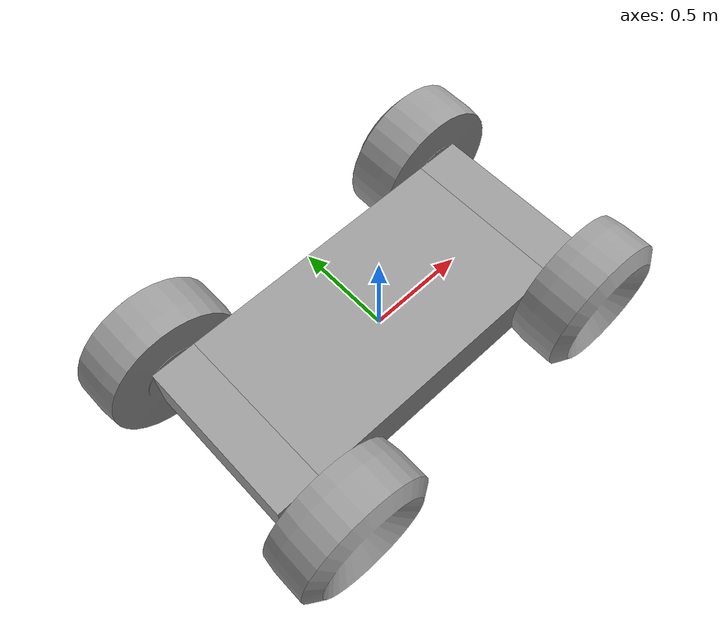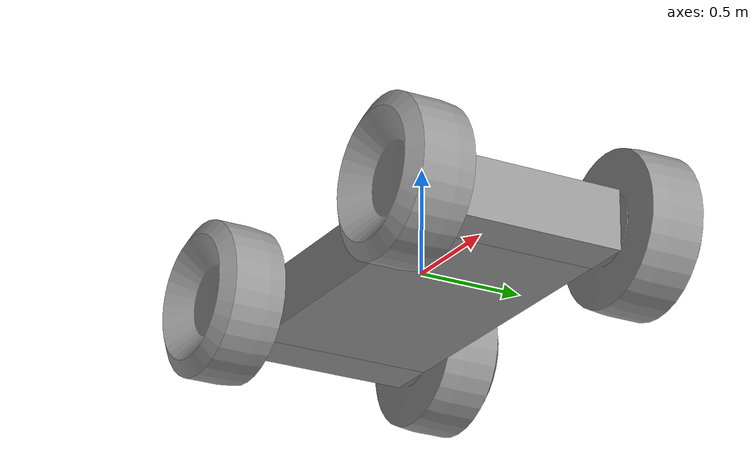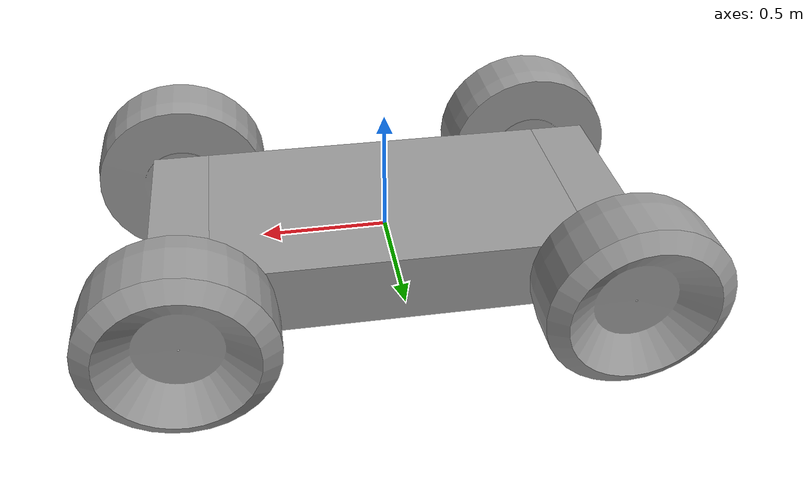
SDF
<?xml version='1.0'?>
<sdf version='1.7'>
  <model name='robovolc'>
    <link name='link_0'>
      <inertial>
        <mass>1</mass>
        <inertia>
          <ixx>0.166667</ixx>
          <ixy>0</ixy>
          <ixz>0</ixz>
          <iyy>0.166667</iyy>
          <iyz>0</iyz>
          <izz>0.166667</izz>
        </inertia>
      </inertial>
      <pose>-0.014097 0.007179 -0 0 -0 0</pose>
      <visual name='visual'>
        <pose>0 0 0 0 -0 0</pose>
        <geometry>
          <mesh>
            <uri>/media/kenan/kenan-acads/thesis/robot-alignment-thesis/gazebo/models/robovolc/parts/lowerframe.dae</uri>
            <scale>1 1 1</scale>
          </mesh>
        </geometry>
        <material>
          <lighting>1</lighting>
          <script>
            <uri>file://media/materials/scripts/gazebo.material</uri>
            <name>Gazebo/Grey</name>
          </script>
          <shader type='pixel'/>
          <emissive>0 0 0 1</emissive>
        </material>
        <transparency>0</transparency>
        <cast_shadows>1</cast_shadows>
      </visual>
      <collision name='collision'>
        <laser_retro>0</laser_retro>
        <max_contacts>10</max_contacts>
        <pose>0 0 0 0 -0 0</pose>
        <geometry>
          <mesh>
            <uri>/media/kenan/kenan-acads/thesis/robot-alignment-thesis/gazebo/models/robovolc/parts/lowerframe.dae</uri>
            <scale>1 1 1</scale>
          </mesh>
        </geometry>
        <surface>
          <friction>
            <ode>
              <mu>1</mu>
              <mu2>1</mu2>
              <fdir1>0 0 0</fdir1>
              <slip1>0</slip1>
              <slip2>0</slip2>
            </ode>
            <torsional>
              <coefficient>1</coefficient>
              <patch_radius>0</patch_radius>
              <surface_radius>0</surface_radius>
              <use_patch_radius>1</use_patch_radius>
              <ode>
                <slip>0</slip>
              </ode>
            </torsional>
          </friction>
          <bounce>
            <restitution_coefficient>0</restitution_coefficient>
            <threshold>1e+06</threshold>
          </bounce>
          <contact>
            <collide_without_contact>0</collide_without_contact>
            <collide_without_contact_bitmask>1</collide_without_contact_bitmask>
            <collide_bitmask>1</collide_bitmask>
            <ode>
              <soft_cfm>0</soft_cfm>
              <soft_erp>0.2</soft_erp>
              <kp>1e+13</kp>
              <kd>1</kd>
              <max_vel>0.01</max_vel>
              <min_depth>0</min_depth>
            </ode>
            <bullet>
              <split_impulse>1</split_impulse>
              <split_impulse_penetration_threshold>-0.01</split_impulse_penetration_threshold>
              <soft_cfm>0</soft_cfm>
              <soft_erp>0.2</soft_erp>
              <kp>1e+13</kp>
              <kd>1</kd>
            </bullet>
          </contact>
        </surface>
      </collision>
    </link>
    <link name='link_1'>
      <inertial>
        <mass>1</mass>
        <inertia>
          <ixx>0.166667</ixx>
          <ixy>0</ixy>
          <ixz>0</ixz>
          <iyy>0.166667</iyy>
          <iyz>0</iyz>
          <izz>0.166667</izz>
        </inertia>
      </inertial>
      <pose>0.819354 0.007179 0 0 -0 0</pose>
      <visual name='visual'>
        <pose>0 0 0 0 -0 0</pose>
        <geometry>
          <mesh>
            <uri>/media/kenan/kenan-acads/thesis/robot-alignment-thesis/gazebo/models/robovolc/parts/freedom.dae</uri>
            <scale>1 1 1</scale>
          </mesh>
        </geometry>
        <material>
          <lighting>1</lighting>
          <script>
            <uri>file://media/materials/scripts/gazebo.material</uri>
            <name>Gazebo/Grey</name>
          </script>
          <shader type='pixel'/>
          <emissive>0 0 0 1</emissive>
        </material>
        <transparency>0</transparency>
        <cast_shadows>1</cast_shadows>
      </visual>
      <collision name='collision'>
        <laser_retro>0</laser_retro>
        <max_contacts>10</max_contacts>
        <pose>0 0 0 0 -0 0</pose>
        <geometry>
          <mesh>
            <uri>/media/kenan/kenan-acads/thesis/robot-alignment-thesis/gazebo/models/robovolc/parts/freedom.dae</uri>
            <scale>1 1 1</scale>
          </mesh>
        </geometry>
        <surface>
          <friction>
            <ode>
              <mu>1</mu>
              <mu2>1</mu2>
              <fdir1>0 0 0</fdir1>
              <slip1>0</slip1>
              <slip2>0</slip2>
            </ode>
            <torsional>
              <coefficient>1</coefficient>
              <patch_radius>0</patch_radius>
              <surface_radius>0</surface_radius>
              <use_patch_radius>1</use_patch_radius>
              <ode>
                <slip>0</slip>
              </ode>
            </torsional>
          </friction>
          <bounce>
            <restitution_coefficient>0</restitution_coefficient>
            <threshold>1e+06</threshold>
          </bounce>
          <contact>
            <collide_without_contact>0</collide_without_contact>
            <collide_without_contact_bitmask>1</collide_without_contact_bitmask>
            <collide_bitmask>1</collide_bitmask>
            <ode>
              <soft_cfm>0</soft_cfm>
              <soft_erp>0.2</soft_erp>
              <kp>1e+13</kp>
              <kd>1</kd>
              <max_vel>0.01</max_vel>
              <min_depth>0</min_depth>
            </ode>
            <bullet>
              <split_impulse>1</split_impulse>
              <split_impulse_penetration_threshold>-0.01</split_impulse_penetration_threshold>
              <soft_cfm>0</soft_cfm>
              <soft_erp>0.2</soft_erp>
              <kp>1e+13</kp>
              <kd>1</kd>
            </bullet>
          </contact>
        </surface>
      </collision>
    </link>
    <link name='link_1_clone'>
      <inertial>
        <mass>1</mass>
        <inertia>
          <ixx>0.166667</ixx>
          <ixy>0</ixy>
          <ixz>0</ixz>
          <iyy>0.166667</iyy>
          <iyz>0</iyz>
          <izz>0.166667</izz>
        </inertia>
      </inertial>
      <pose>-0.84755 0.007179 0 0 -0 0</pose>
      <visual name='visual'>
        <pose>0 0 0 0 -0 0</pose>
        <geometry>
          <mesh>
            <uri>/media/kenan/kenan-acads/thesis/robot-alignment-thesis/gazebo/models/robovolc/parts/freedom.dae</uri>
            <scale>1 1 1</scale>
          </mesh>
        </geometry>
        <material>
          <lighting>1</lighting>
          <script>
            <uri>file://media/materials/scripts/gazebo.material</uri>
            <name>Gazebo/Grey</name>
          </script>
          <shader type='pixel'/>
          <emissive>0 0 0 1</emissive>
        </material>
        <transparency>0</transparency>
        <cast_shadows>1</cast_shadows>
      </visual>
      <collision name='collision'>
        <laser_retro>0</laser_retro>
        <max_contacts>10</max_contacts>
        <pose>0 0 0 0 -0 0</pose>
        <geometry>
          <mesh>
            <uri>/media/kenan/kenan-acads/thesis/robot-alignment-thesis/gazebo/models/robovolc/parts/freedom.dae</uri>
            <scale>1 1 1</scale>
          </mesh>
        </geometry>
        <surface>
          <friction>
            <ode>
              <mu>1</mu>
              <mu2>1</mu2>
              <fdir1>0 0 0</fdir1>
              <slip1>0</slip1>
              <slip2>0</slip2>
            </ode>
            <torsional>
              <coefficient>1</coefficient>
              <patch_radius>0</patch_radius>
              <surface_radius>0</surface_radius>
              <use_patch_radius>1</use_patch_radius>
              <ode>
                <slip>0</slip>
              </ode>
            </torsional>
          </friction>
          <bounce>
            <restitution_coefficient>0</restitution_coefficient>
            <threshold>1e+06</threshold>
          </bounce>
          <contact>
            <collide_without_contact>0</collide_without_contact>
            <collide_without_contact_bitmask>1</collide_without_contact_bitmask>
            <collide_bitmask>1</collide_bitmask>
            <ode>
              <soft_cfm>0</soft_cfm>
              <soft_erp>0.2</soft_erp>
              <kp>1e+13</kp>
              <kd>1</kd>
              <max_vel>0.01</max_vel>
              <min_depth>0</min_depth>
            </ode>
            <bullet>
              <split_impulse>1</split_impulse>
              <split_impulse_penetration_threshold>-0.01</split_impulse_penetration_threshold>
              <soft_cfm>0</soft_cfm>
              <soft_erp>0.2</soft_erp>
              <kp>1e+13</kp>
              <kd>1</kd>
            </bullet>
          </contact>
        </surface>
      </collision>
    </link>
    <link name='link_2'>
      <inertial>
        <mass>1</mass>
        <inertia>
          <ixx>0.166667</ixx>
          <ixy>0</ixy>
          <ixz>0</ixz>
          <iyy>0.166667</iyy>
          <iyz>0</iyz>
          <izz>0.166667</izz>
        </inertia>
      </inertial>
      <pose>0.826437 -0.58875 0 0 -0 0</pose>
      <visual name='visual'>
        <pose>0 0 0 0 -0 0</pose>
        <geometry>
          <mesh>
            <uri>/media/kenan/kenan-acads/thesis/robot-alignment-thesis/gazebo/models/robovolc/parts/wheel.dae</uri>
            <scale>1 1 1</scale>
          </mesh>
        </geometry>
        <material>
          <lighting>1</lighting>
          <script>
            <uri>file://media/materials/scripts/gazebo.material</uri>
            <name>Gazebo/Grey</name>
          </script>
          <shader type='pixel'/>
          <emissive>0 0 0 1</emissive>
        </material>
        <transparency>0</transparency>
        <cast_shadows>1</cast_shadows>
      </visual>
      <collision name='collision'>
        <laser_retro>0</laser_retro>
        <max_contacts>10</max_contacts>
        <pose>0 0 0 0 -0 0</pose>
        <geometry>
          <mesh>
            <uri>/media/kenan/kenan-acads/thesis/robot-alignment-thesis/gazebo/models/robovolc/parts/wheel.dae</uri>
            <scale>1 1 1</scale>
          </mesh>
        </geometry>
        <surface>
          <friction>
            <ode>
              <mu>1</mu>
              <mu2>1</mu2>
              <fdir1>0 0 0</fdir1>
              <slip1>0</slip1>
              <slip2>0</slip2>
            </ode>
            <torsional>
              <coefficient>1</coefficient>
              <patch_radius>0</patch_radius>
              <surface_radius>0</surface_radius>
              <use_patch_radius>1</use_patch_radius>
              <ode>
                <slip>0</slip>
              </ode>
            </torsional>
          </friction>
          <bounce>
            <restitution_coefficient>0</restitution_coefficient>
            <threshold>1e+06</threshold>
          </bounce>
          <contact>
            <collide_without_contact>0</collide_without_contact>
            <collide_without_contact_bitmask>1</collide_without_contact_bitmask>
            <collide_bitmask>1</collide_bitmask>
            <ode>
              <soft_cfm>0</soft_cfm>
              <soft_erp>0.2</soft_erp>
              <kp>1e+13</kp>
              <kd>1</kd>
              <max_vel>0.01</max_vel>
              <min_depth>0</min_depth>
            </ode>
            <bullet>
              <split_impulse>1</split_impulse>
              <split_impulse_penetration_threshold>-0.01</split_impulse_penetration_threshold>
              <soft_cfm>0</soft_cfm>
              <soft_erp>0.2</soft_erp>
              <kp>1e+13</kp>
              <kd>1</kd>
            </bullet>
          </contact>
        </surface>
      </collision>
    </link>
    <link name='link_2_clone'>
      <inertial>
        <mass>1</mass>
        <inertia>
          <ixx>0.166667</ixx>
          <ixy>0</ixy>
          <ixz>0</ixz>
          <iyy>0.166667</iyy>
          <iyz>0</iyz>
          <izz>0.166667</izz>
        </inertia>
      </inertial>
      <pose>-0.747556 -0.632039 -0 0 -0 0</pose>
      <visual name='visual'>
        <pose>0 0 0 0 -0 0</pose>
        <geometry>
          <mesh>
            <uri>/media/kenan/kenan-acads/thesis/robot-alignment-thesis/gazebo/models/robovolc/parts/wheel.dae</uri>
            <scale>1 1 1</scale>
          </mesh>
        </geometry>
        <material>
          <lighting>1</lighting>
          <script>
            <uri>file://media/materials/scripts/gazebo.material</uri>
            <name>Gazebo/Grey</name>
          </script>
          <shader type='pixel'/>
          <emissive>0 0 0 1</emissive>
        </material>
        <transparency>0</transparency>
        <cast_shadows>1</cast_shadows>
      </visual>
      <collision name='collision'>
        <laser_retro>0</laser_retro>
        <max_contacts>10</max_contacts>
        <pose>0 0 0 0 -0 0</pose>
        <geometry>
          <mesh>
            <uri>/media/kenan/kenan-acads/thesis/robot-alignment-thesis/gazebo/models/robovolc/parts/wheel.dae</uri>
            <scale>1 1 1</scale>
          </mesh>
        </geometry>
        <surface>
          <friction>
            <ode>
              <mu>1</mu>
              <mu2>1</mu2>
              <fdir1>0 0 0</fdir1>
              <slip1>0</slip1>
              <slip2>0</slip2>
            </ode>
            <torsional>
              <coefficient>1</coefficient>
              <patch_radius>0</patch_radius>
              <surface_radius>0</surface_radius>
              <use_patch_radius>1</use_patch_radius>
              <ode>
                <slip>0</slip>
              </ode>
            </torsional>
          </friction>
          <bounce>
            <restitution_coefficient>0</restitution_coefficient>
            <threshold>1e+06</threshold>
          </bounce>
          <contact>
            <collide_without_contact>0</collide_without_contact>
            <collide_without_contact_bitmask>1</collide_without_contact_bitmask>
            <collide_bitmask>1</collide_bitmask>
            <ode>
              <soft_cfm>0</soft_cfm>
              <soft_erp>0.2</soft_erp>
              <kp>1e+13</kp>
              <kd>1</kd>
              <max_vel>0.01</max_vel>
              <min_depth>0</min_depth>
            </ode>
            <bullet>
              <split_impulse>1</split_impulse>
              <split_impulse_penetration_threshold>-0.01</split_impulse_penetration_threshold>
              <soft_cfm>0</soft_cfm>
              <soft_erp>0.2</soft_erp>
              <kp>1e+13</kp>
              <kd>1</kd>
            </bullet>
          </contact>
        </surface>
      </collision>
    </link>
    <link name='link_2_clone_0_clone_clone'>
      <inertial>
        <mass>1</mass>
        <inertia>
          <ixx>0.166667</ixx>
          <ixy>0</ixy>
          <ixz>0</ixz>
          <iyy>0.166667</iyy>
          <iyz>0</iyz>
          <izz>0.166667</izz>
        </inertia>
        <pose>0 0 0 0 -0 0</pose>
      </inertial>
      <pose>0.826437 0.60311 0 0 -0 3.14159</pose>
      <gravity>1</gravity>
      <self_collide>0</self_collide>
      <kinematic>0</kinematic>
      <enable_wind>0</enable_wind>
      <visual name='visual'>
        <pose>0 0 0 0 -0 0</pose>
        <geometry>
          <mesh>
            <uri>/media/kenan/kenan-acads/thesis/robot-alignment-thesis/gazebo/models/robovolc/parts/wheel.dae</uri>
            <scale>1 1 1</scale>
          </mesh>
        </geometry>
        <material>
          <lighting>1</lighting>
          <script>
            <uri>file://media/materials/scripts/gazebo.material</uri>
            <name>Gazebo/Grey</name>
          </script>
          <shader type='pixel'>
            <normal_map>__default__</normal_map>
          </shader>
          <emissive>0 0 0 1</emissive>
          <ambient>0.3 0.3 0.3 1</ambient>
          <diffuse>0.7 0.7 0.7 1</diffuse>
          <specular>0.01 0.01 0.01 1</specular>
        </material>
        <transparency>0</transparency>
        <cast_shadows>1</cast_shadows>
      </visual>
      <collision name='collision'>
        <laser_retro>0</laser_retro>
        <max_contacts>10</max_contacts>
        <pose>0 0 0 0 -0 0</pose>
        <geometry>
          <mesh>
            <uri>/media/kenan/kenan-acads/thesis/robot-alignment-thesis/gazebo/models/robovolc/parts/wheel.dae</uri>
            <scale>1 1 1</scale>
          </mesh>
        </geometry>
        <surface>
          <friction>
            <ode>
              <mu>1</mu>
              <mu2>1</mu2>
              <fdir1>0 0 0</fdir1>
              <slip1>0</slip1>
              <slip2>0</slip2>
            </ode>
            <torsional>
              <coefficient>1</coefficient>
              <patch_radius>0</patch_radius>
              <surface_radius>0</surface_radius>
              <use_patch_radius>1</use_patch_radius>
              <ode>
                <slip>0</slip>
              </ode>
            </torsional>
          </friction>
          <bounce>
            <restitution_coefficient>0</restitution_coefficient>
            <threshold>1e+06</threshold>
          </bounce>
          <contact>
            <collide_without_contact>0</collide_without_contact>
            <collide_without_contact_bitmask>1</collide_without_contact_bitmask>
            <collide_bitmask>1</collide_bitmask>
            <ode>
              <soft_cfm>0</soft_cfm>
              <soft_erp>0.2</soft_erp>
              <kp>1e+13</kp>
              <kd>1</kd>
              <max_vel>0.01</max_vel>
              <min_depth>0</min_depth>
            </ode>
            <bullet>
              <split_impulse>1</split_impulse>
              <split_impulse_penetration_threshold>-0.01</split_impulse_penetration_threshold>
              <soft_cfm>0</soft_cfm>
              <soft_erp>0.2</soft_erp>
              <kp>1e+13</kp>
              <kd>1</kd>
            </bullet>
          </contact>
        </surface>
      </collision>
    </link>
    <link name='link_2_clone_0_clone_clone_clone'>
      <inertial>
        <mass>1</mass>
        <inertia>
          <ixx>0.166667</ixx>
          <ixy>0</ixy>
          <ixz>0</ixz>
          <iyy>0.166667</iyy>
          <iyz>0</iyz>
          <izz>0.166667</izz>
        </inertia>
        <pose>0 0 0 0 -0 0</pose>
      </inertial>
      <pose>-0.84755 0.60311 0 0 -0 3.14159</pose>
      <gravity>1</gravity>
      <self_collide>0</self_collide>
      <kinematic>0</kinematic>
      <enable_wind>0</enable_wind>
      <visual name='visual'>
        <pose>0 0 0 0 -0 0</pose>
        <geometry>
          <mesh>
            <uri>/media/kenan/kenan-acads/thesis/robot-alignment-thesis/gazebo/models/robovolc/parts/wheel.dae</uri>
            <scale>1 1 1</scale>
          </mesh>
        </geometry>
        <material>
          <lighting>1</lighting>
          <script>
            <uri>file://media/materials/scripts/gazebo.material</uri>
            <name>Gazebo/Grey</name>
          </script>
          <shader type='pixel'>
            <normal_map>__default__</normal_map>
          </shader>
          <emissive>0 0 0 1</emissive>
          <ambient>0.3 0.3 0.3 1</ambient>
          <diffuse>0.7 0.7 0.7 1</diffuse>
          <specular>0.01 0.01 0.01 1</specular>
        </material>
        <transparency>0</transparency>
        <cast_shadows>1</cast_shadows>
      </visual>
      <collision name='collision'>
        <laser_retro>0</laser_retro>
        <max_contacts>10</max_contacts>
        <pose>0 0 0 0 -0 0</pose>
        <geometry>
          <mesh>
            <uri>/media/kenan/kenan-acads/thesis/robot-alignment-thesis/gazebo/models/robovolc/parts/wheel.dae</uri>
            <scale>1 1 1</scale>
          </mesh>
        </geometry>
        <surface>
          <friction>
            <ode>
              <mu>1</mu>
              <mu2>1</mu2>
              <fdir1>0 0 0</fdir1>
              <slip1>0</slip1>
              <slip2>0</slip2>
            </ode>
            <torsional>
              <coefficient>1</coefficient>
              <patch_radius>0</patch_radius>
              <surface_radius>0</surface_radius>
              <use_patch_radius>1</use_patch_radius>
              <ode>
                <slip>0</slip>
              </ode>
            </torsional>
          </friction>
          <bounce>
            <restitution_coefficient>0</restitution_coefficient>
            <threshold>1e+06</threshold>
          </bounce>
          <contact>
            <collide_without_contact>0</collide_without_contact>
            <collide_without_contact_bitmask>1</collide_without_contact_bitmask>
            <collide_bitmask>1</collide_bitmask>
            <ode>
              <soft_cfm>0</soft_cfm>
              <soft_erp>0.2</soft_erp>
              <kp>1e+13</kp>
              <kd>1</kd>
              <max_vel>0.01</max_vel>
              <min_depth>0</min_depth>
            </ode>
            <bullet>
              <split_impulse>1</split_impulse>
              <split_impulse_penetration_threshold>-0.01</split_impulse_penetration_threshold>
              <soft_cfm>0</soft_cfm>
              <soft_erp>0.2</soft_erp>
              <kp>1e+13</kp>
              <kd>1</kd>
            </bullet>
          </contact>
        </surface>
      </collision>
    </link>
    <joint name='link_0_JOINT_0' type='revolute'>
      <parent>link_0</parent>
      <child>link_1</child>
      <pose>0 0 0 0 -0 0</pose>
      <axis>
        <xyz>1 0 0</xyz>
        <limit>
          <lower>-1.79769e+308</lower>
          <upper>1.79769e+308</upper>
          <effort>-1</effort>
          <velocity>-1</velocity>
        </limit>
        <dynamics>
          <spring_reference>0</spring_reference>
          <spring_stiffness>0</spring_stiffness>
          <damping>0</damping>
        </dynamics>
      </axis>
      <physics>
        <ode>
          <limit>
            <cfm>0</cfm>
            <erp>0.2</erp>
          </limit>
          <suspension>
            <cfm>0</cfm>
            <erp>0.2</erp>
          </suspension>
        </ode>
      </physics>
    </joint>
    <joint name='link_0_JOINT_1' type='revolute'>
      <parent>link_0</parent>
      <child>link_1_clone</child>
      <pose>0 0 0 0 -0 0</pose>
      <axis>
        <xyz>1 0 0</xyz>
        <limit>
          <lower>-1.79769e+308</lower>
          <upper>1.79769e+308</upper>
          <effort>-1</effort>
          <velocity>-1</velocity>
        </limit>
        <dynamics>
          <spring_reference>0</spring_reference>
          <spring_stiffness>0</spring_stiffness>
          <damping>0</damping>
        </dynamics>
      </axis>
      <physics>
        <ode>
          <limit>
            <cfm>0</cfm>
            <erp>0.2</erp>
          </limit>
          <suspension>
            <cfm>0</cfm>
            <erp>0.2</erp>
          </suspension>
        </ode>
      </physics>
    </joint>
    <joint name='link_1_JOINT_2' type='revolute'>
      <parent>link_1</parent>
      <child>link_2</child>
      <pose>0 0 0 0 -0 0</pose>
      <axis>
        <xyz>-0 -1 -0</xyz>
        <limit>
          <lower>-1.79769e+308</lower>
          <upper>1.79769e+308</upper>
          <effort>-1</effort>
          <velocity>-1</velocity>
        </limit>
        <dynamics>
          <spring_reference>0</spring_reference>
          <spring_stiffness>0</spring_stiffness>
          <damping>0</damping>
        </dynamics>
      </axis>
      <physics>
        <ode>
          <limit>
            <cfm>0</cfm>
            <erp>0.2</erp>
          </limit>
          <suspension>
            <cfm>0</cfm>
            <erp>0.2</erp>
          </suspension>
        </ode>
      </physics>
    </joint>
    <joint name='link_1_JOINT_5' type='revolute'>
      <parent>link_1</parent>
      <child>link_2_clone_0_clone_clone</child>
      <pose>0 0 0 0 -0 0</pose>
      <axis>
        <xyz>-0 -1 -0</xyz>
        <limit>
          <lower>-1.79769e+308</lower>
          <upper>1.79769e+308</upper>
          <effort>-1</effort>
          <velocity>-1</velocity>
        </limit>
        <dynamics>
          <spring_reference>0</spring_reference>
          <spring_stiffness>0</spring_stiffness>
          <damping>0</damping>
        </dynamics>
      </axis>
      <physics>
        <ode>
          <limit>
            <cfm>0</cfm>
            <erp>0.2</erp>
          </limit>
          <suspension>
            <cfm>0</cfm>
            <erp>0.2</erp>
          </suspension>
        </ode>
      </physics>
    </joint>
    <joint name='link_1_clone_JOINT_6' type='revolute'>
      <parent>link_1_clone</parent>
      <child>link_2_clone_0_clone_clone_clone</child>
      <pose>0 0 0 0 -0 0</pose>
      <axis>
        <xyz>-0 -1 -0</xyz>
        <limit>
          <lower>-1.79769e+308</lower>
          <upper>1.79769e+308</upper>
          <effort>-1</effort>
          <velocity>-1</velocity>
        </limit>
        <dynamics>
          <spring_reference>0</spring_reference>
          <spring_stiffness>0</spring_stiffness>
          <damping>0</damping>
        </dynamics>
      </axis>
      <physics>
        <ode>
          <limit>
            <cfm>0</cfm>
            <erp>0.2</erp>
          </limit>
          <suspension>
            <cfm>0</cfm>
            <erp>0.2</erp>
          </suspension>
        </ode>
      </physics>
    </joint>
    <static>0</static>
    <allow_auto_disable>1</allow_auto_disable>
  </model>
</sdf>
